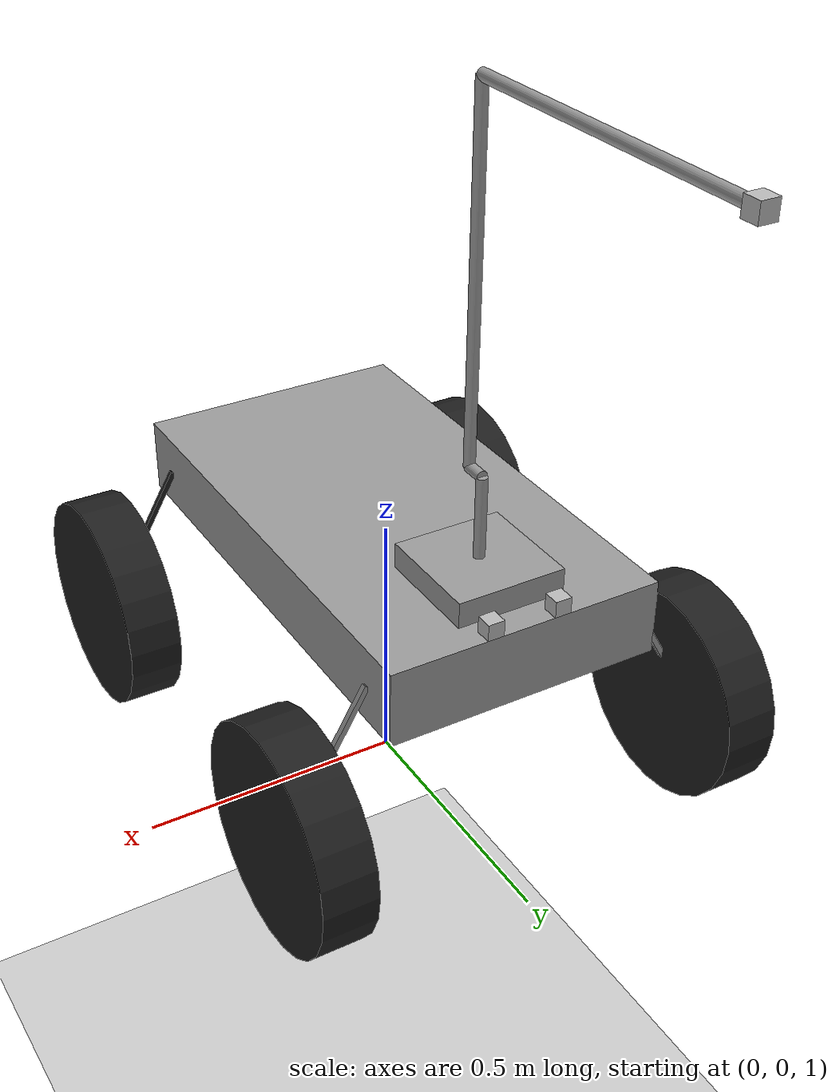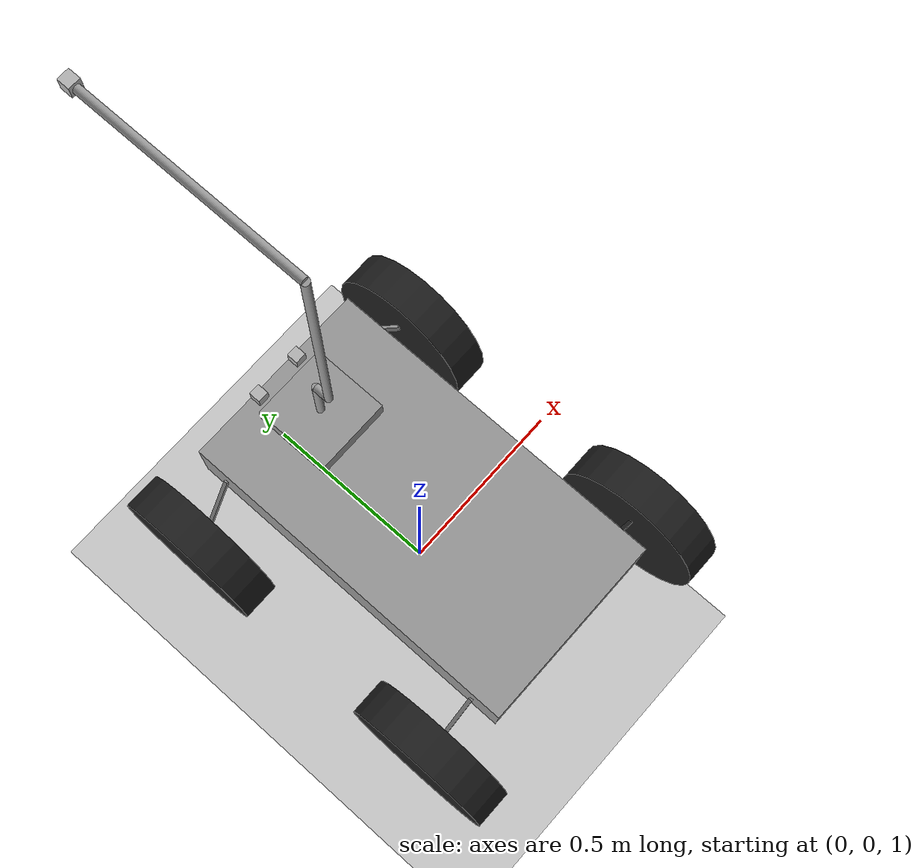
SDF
<sdf version="1.6">
 <world name="sim">
  <gravity>0 0 -9.8</gravity>
  <magnetic_field>6e-06 2.3e-05 -4.2e-05</magnetic_field>
  <atmosphere type="adiabatic"/>
  <physics name="default_physics" default="0" type="ode">
   <max_step_size>0.001</max_step_size>
   <real_time_factor>1</real_time_factor>
   <real_time_update_rate>1000</real_time_update_rate>
  </physics>
  <scene><ambient>0.8 0.8 0.8 2</ambient><background>0.7 0.7 0.7 1</background><shadows>1</shadows></scene>
  <spherical_coordinates>
   <surface_model>EARTH_WGS84</surface_model>
   <latitude_deg>0</latitude_deg>
   <longitude_deg>0</longitude_deg>
   <elevation>0</elevation>
   <heading_deg>0</heading_deg>
  </spherical_coordinates>
  <include><uri>model://sun</uri></include>
  <include><uri>model://Robot_Base</uri><name>rover</name><pose>0 0 0.5   0 0 0</pose></include>
  <plugin name="SimMotorNode" filename="libSimMotorNode.so"/>
  <plugin name="FixFrictionNode" filename="libFixFrictionNode.so"/>
  <model name="ground_plane">
   <static>1</static>
   <link name="link">
    <collision name="collision">
     <geometry><plane><normal>0 0 1</normal><size>100 100</size></plane></geometry>
     <surface><friction><ode><mu>0.25</mu><mu2>0.25</mu2></ode></friction></surface>
    </collision>
    <visual name="visual">
     <cast_shadows>0</cast_shadows>
     <geometry><plane><normal>0 0 1</normal><size>100 100</size></plane></geometry>
     <material>
      <script><uri>file://media/materials/scripts/gazebo.material</uri><name>Gazebo/Tan</name></script>
     </material>
    </visual>
   </link>
   <pose>0.000967 -0.039388 0 0 -0 0</pose>
  </model>
 </world>
</sdf>

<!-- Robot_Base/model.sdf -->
<sdf version='1.6'>
  <model name='Robot_Base'>
    <link name='chassis'>
      <pose frame=''>0 -0 1 0 -0 0</pose>
      <inertial>
        <mass>50</mass>
        <inertia>
          <ixx>0.25</ixx>
          <ixy>0</ixy>
          <ixz>0</ixz>
          <iyy>0.25</iyy>
          <iyz>0</iyz>
          <izz>0.25</izz>
        </inertia>
        <pose frame=''>0 0 0 0 -0 0</pose>
      </inertial>
      <self_collide>0</self_collide>
      <kinematic>0</kinematic>
      <visual name='visual'>
        <pose frame=''>0 0 0 0 -0 0</pose>
        <geometry>
          <box>
            <size>0.508 0.9144 0.1397</size>
          </box>
        </geometry>
        <material>
          <lighting>1</lighting>
          <script>
            <uri>file://media/materials/scripts/gazebo.material</uri>
            <name>Gazebo/Grey</name>
          </script>
          <ambient>0.9 0.9 0.9 1</ambient>
          <diffuse>0.7 0.7 0.7 1</diffuse>
          <specular>0.01 0.01 0.01 1</specular>
          <emissive>0 0 0 1</emissive>
          <shader type='vertex'>
            <normal_map>__default__</normal_map>
          </shader>
        </material>
        <cast_shadows>1</cast_shadows>
        <transparency>0</transparency>
      </visual>
      <collision name='collision'>
        <laser_retro>0</laser_retro>
        <max_contacts>10</max_contacts>
        <pose frame=''>0 0 0 0 -0 0</pose>
        <geometry>
          <box>
            <size>0.508 0.9144 0.1397</size>
          </box>
        </geometry>
        <surface>
          <friction>
            <ode>
              <mu>1</mu>
              <mu2>1</mu2>
              <fdir1>0 0 0</fdir1>
              <slip1>0</slip1>
              <slip2>0</slip2>
            </ode>
            <torsional>
              <coefficient>1</coefficient>
              <patch_radius>0</patch_radius>
              <surface_radius>0</surface_radius>
              <use_patch_radius>1</use_patch_radius>
              <ode>
                <slip>0</slip>
              </ode>
            </torsional>
          </friction>
          <bounce>
            <restitution_coefficient>0</restitution_coefficient>
            <threshold>1e+06</threshold>
          </bounce>
          <contact>
            <collide_without_contact>0</collide_without_contact>
            <collide_without_contact_bitmask>1</collide_without_contact_bitmask>
            <collide_bitmask>1</collide_bitmask>
            <ode>
              <soft_cfm>0</soft_cfm>
              <soft_erp>0.2</soft_erp>
              <kp>1e+13</kp>
              <kd>1</kd>
              <max_vel>0.01</max_vel>
              <min_depth>0</min_depth>
            </ode>
            <bullet>
              <split_impulse>1</split_impulse>
              <split_impulse_penetration_threshold>-0.01</split_impulse_penetration_threshold>
              <soft_cfm>0</soft_cfm>
              <soft_erp>0.2</soft_erp>
              <kp>1e+13</kp>
              <kd>1</kd>
            </bullet>
          </contact>
        </surface>
      </collision>
    </link>
    <link name='back_arm'>
      <pose frame=''>0 0.2667 1.57734 0 -0 0</pose>
      <inertial>
        <mass>1</mass>
        <inertia>
          <ixx>0.145833</ixx>
          <ixy>0</ixy>
          <ixz>0</ixz>
          <iyy>0.145833</iyy>
          <iyz>0</iyz>
          <izz>0.125</izz>
        </inertia>
        <pose frame=''>0 0 0 0 -0 0</pose>
      </inertial>
      <self_collide>0</self_collide>
      <kinematic>0</kinematic>
      <visual name='visual'>
        <pose frame=''>0 0 0 0 -0 0</pose>
        <geometry>
          <cylinder>
            <radius>0.01</radius>
            <length>0.6223</length>
          </cylinder>
        </geometry>
        <material>
          <lighting>1</lighting>
          <script>
            <uri>file://media/materials/scripts/gazebo.material</uri>
            <name>Gazebo/Grey</name>
          </script>
          <ambient>0.3 0.3 0.3 1</ambient>
          <diffuse>0.7 0.7 0.7 1</diffuse>
          <specular>0.01 0.01 0.01 1</specular>
          <emissive>0 0 0 1</emissive>
          <shader type='vertex'>
            <normal_map>__default__</normal_map>
          </shader>
        </material>
        <cast_shadows>1</cast_shadows>
        <transparency>0</transparency>
      </visual>
      <collision name='collision'>
        <laser_retro>0</laser_retro>
        <max_contacts>10</max_contacts>
        <pose frame=''>0 0 0 0 -0 0</pose>
        <geometry>
          <cylinder>
            <radius>0.01</radius>
            <length>0.6223</length>
          </cylinder>
        </geometry>
        <surface>
          <friction>
            <ode>
              <mu>1</mu>
              <mu2>1</mu2>
              <fdir1>0 0 0</fdir1>
              <slip1>0</slip1>
              <slip2>0</slip2>
            </ode>
            <torsional>
              <coefficient>1</coefficient>
              <patch_radius>0</patch_radius>
              <surface_radius>0</surface_radius>
              <use_patch_radius>1</use_patch_radius>
              <ode>
                <slip>0</slip>
              </ode>
            </torsional>
          </friction>
          <bounce>
            <restitution_coefficient>0</restitution_coefficient>
            <threshold>1e+06</threshold>
          </bounce>
          <contact>
            <collide_without_contact>0</collide_without_contact>
            <collide_without_contact_bitmask>1</collide_without_contact_bitmask>
            <collide_bitmask>1</collide_bitmask>
            <ode>
              <soft_cfm>0</soft_cfm>
              <soft_erp>0.2</soft_erp>
              <kp>1e+13</kp>
              <kd>1</kd>
              <max_vel>0.01</max_vel>
              <min_depth>0</min_depth>
            </ode>
            <bullet>
              <split_impulse>1</split_impulse>
              <split_impulse_penetration_threshold>-0.01</split_impulse_penetration_threshold>
              <soft_cfm>0</soft_cfm>
              <soft_erp>0.2</soft_erp>
              <kp>1e+13</kp>
              <kd>1</kd>
            </bullet>
          </contact>
        </surface>
      </collision>
    </link>
    <link name='base_arm'>
      <pose frame=''>-0 0.3048 1.09335 0 -0 0</pose>
      <inertial>
        <mass>1</mass>
        <inertia>
          <ixx>0.166667</ixx>
          <ixy>0</ixy>
          <ixz>0</ixz>
          <iyy>0.166667</iyy>
          <iyz>0</iyz>
          <izz>0.166667</izz>
        </inertia>
        <pose frame=''>0 0 0 0 -0 0</pose>
      </inertial>
      <self_collide>0</self_collide>
      <kinematic>0</kinematic>
      <visual name='visual'>
        <pose frame=''>0 0 0 0 -0 0</pose>
        <geometry>
          <box>
            <size>0.2 0.2 0.04699</size>
          </box>
        </geometry>
        <material>
          <lighting>1</lighting>
          <script>
            <uri>file://media/materials/scripts/gazebo.material</uri>
            <name>Gazebo/Grey</name>
          </script>
          <ambient>0.3 0.3 0.3 1</ambient>
          <diffuse>0.7 0.7 0.7 1</diffuse>
          <specular>0.01 0.01 0.01 1</specular>
          <emissive>0 0 0 1</emissive>
          <shader type='vertex'>
            <normal_map>__default__</normal_map>
          </shader>
        </material>
        <cast_shadows>1</cast_shadows>
        <transparency>0</transparency>
      </visual>
      <collision name='collision'>
        <laser_retro>0</laser_retro>
        <max_contacts>10</max_contacts>
        <pose frame=''>0 0 0 0 -0 0</pose>
        <geometry>
          <box>
            <size>0.2 0.2 0.04699</size>
          </box>
        </geometry>
        <surface>
          <friction>
            <ode>
              <mu>1</mu>
              <mu2>1</mu2>
              <fdir1>0 0 0</fdir1>
              <slip1>0</slip1>
              <slip2>0</slip2>
            </ode>
            <torsional>
              <coefficient>1</coefficient>
              <patch_radius>0</patch_radius>
              <surface_radius>0</surface_radius>
              <use_patch_radius>1</use_patch_radius>
              <ode>
                <slip>0</slip>
              </ode>
            </torsional>
          </friction>
          <bounce>
            <restitution_coefficient>0</restitution_coefficient>
            <threshold>1e+06</threshold>
          </bounce>
          <contact>
            <collide_without_contact>0</collide_without_contact>
            <collide_without_contact_bitmask>1</collide_without_contact_bitmask>
            <collide_bitmask>1</collide_bitmask>
            <ode>
              <soft_cfm>0</soft_cfm>
              <soft_erp>0.2</soft_erp>
              <kp>1e+13</kp>
              <kd>1</kd>
              <max_vel>0.01</max_vel>
              <min_depth>0</min_depth>
            </ode>
            <bullet>
              <split_impulse>1</split_impulse>
              <split_impulse_penetration_threshold>-0.01</split_impulse_penetration_threshold>
              <soft_cfm>0</soft_cfm>
              <soft_erp>0.2</soft_erp>
              <kp>1e+13</kp>
              <kd>1</kd>
            </bullet>
          </contact>
        </surface>
      </collision>
    </link>
    <link name='center_shaft_arm'>
      <pose frame=''>0 0.3048 1.19152 0 -0 0</pose>
      <inertial>
        <mass>1</mass>
        <inertia>
          <ixx>0.145833</ixx>
          <ixy>0</ixy>
          <ixz>0</ixz>
          <iyy>0.145833</iyy>
          <iyz>0</iyz>
          <izz>0.125</izz>
        </inertia>
        <pose frame=''>0 0 0 0 -0 0</pose>
      </inertial>
      <self_collide>0</self_collide>
      <kinematic>0</kinematic>
      <visual name='visual'>
        <pose frame=''>0 0 0 0 -0 0</pose>
        <geometry>
          <cylinder>
            <radius>0.01</radius>
            <length>0.149352</length>
          </cylinder>
        </geometry>
        <material>
          <lighting>1</lighting>
          <script>
            <uri>file://media/materials/scripts/gazebo.material</uri>
            <name>Gazebo/Grey</name>
          </script>
          <ambient>0.3 0.3 0.3 1</ambient>
          <diffuse>0.7 0.7 0.7 1</diffuse>
          <specular>0.01 0.01 0.01 1</specular>
          <emissive>0 0 0 1</emissive>
          <shader type='vertex'>
            <normal_map>__default__</normal_map>
          </shader>
        </material>
        <cast_shadows>1</cast_shadows>
        <transparency>0</transparency>
      </visual>
      <collision name='collision'>
        <laser_retro>0</laser_retro>
        <max_contacts>10</max_contacts>
        <pose frame=''>0 0 0 0 -0 0</pose>
        <geometry>
          <cylinder>
            <radius>0.01</radius>
            <length>0.149352</length>
          </cylinder>
        </geometry>
        <surface>
          <friction>
            <ode>
              <mu>1</mu>
              <mu2>1</mu2>
              <fdir1>0 0 0</fdir1>
              <slip1>0</slip1>
              <slip2>0</slip2>
            </ode>
            <torsional>
              <coefficient>1</coefficient>
              <patch_radius>0</patch_radius>
              <surface_radius>0</surface_radius>
              <use_patch_radius>1</use_patch_radius>
              <ode>
                <slip>0</slip>
              </ode>
            </torsional>
          </friction>
          <bounce>
            <restitution_coefficient>0</restitution_coefficient>
            <threshold>1e+06</threshold>
          </bounce>
          <contact>
            <collide_without_contact>0</collide_without_contact>
            <collide_without_contact_bitmask>1</collide_without_contact_bitmask>
            <collide_bitmask>1</collide_bitmask>
            <ode>
              <soft_cfm>0</soft_cfm>
              <soft_erp>0.2</soft_erp>
              <kp>1e+13</kp>
              <kd>1</kd>
              <max_vel>0.01</max_vel>
              <min_depth>0</min_depth>
            </ode>
            <bullet>
              <split_impulse>1</split_impulse>
              <split_impulse_penetration_threshold>-0.01</split_impulse_penetration_threshold>
              <soft_cfm>0</soft_cfm>
              <soft_erp>0.2</soft_erp>
              <kp>1e+13</kp>
              <kd>1</kd>
            </bullet>
          </contact>
        </surface>
      </collision>
    </link>
    <link name='center_shaft_offset_arm'>
      <pose frame=''>-0 0.28575 1.26619 -1.5708 0 0</pose>
      <inertial>
        <mass>1</mass>
        <inertia>
          <ixx>0.145833</ixx>
          <ixy>0</ixy>
          <ixz>0</ixz>
          <iyy>0.145833</iyy>
          <iyz>0</iyz>
          <izz>0.125</izz>
        </inertia>
        <pose frame=''>0 0 0 0 -0 0</pose>
      </inertial>
      <self_collide>0</self_collide>
      <kinematic>0</kinematic>
      <visual name='visual'>
        <pose frame=''>0 0 0 0 -0 0</pose>
        <geometry>
          <cylinder>
            <radius>0.01</radius>
            <length>0.0381</length>
          </cylinder>
        </geometry>
        <material>
          <lighting>1</lighting>
          <script>
            <uri>file://media/materials/scripts/gazebo.material</uri>
            <name>Gazebo/Grey</name>
          </script>
          <ambient>0.3 0.3 0.3 1</ambient>
          <diffuse>0.7 0.7 0.7 1</diffuse>
          <specular>0.01 0.01 0.01 1</specular>
          <emissive>0 0 0 1</emissive>
          <shader type='vertex'>
            <normal_map>__default__</normal_map>
          </shader>
        </material>
        <cast_shadows>1</cast_shadows>
        <transparency>0</transparency>
      </visual>
      <collision name='collision'>
        <laser_retro>0</laser_retro>
        <max_contacts>10</max_contacts>
        <pose frame=''>0 0 0 0 -0 0</pose>
        <geometry>
          <cylinder>
            <radius>0.01</radius>
            <length>0.0381</length>
          </cylinder>
        </geometry>
        <surface>
          <friction>
            <ode>
              <mu>1</mu>
              <mu2>1</mu2>
              <fdir1>0 0 0</fdir1>
              <slip1>0</slip1>
              <slip2>0</slip2>
            </ode>
            <torsional>
              <coefficient>1</coefficient>
              <patch_radius>0</patch_radius>
              <surface_radius>0</surface_radius>
              <use_patch_radius>1</use_patch_radius>
              <ode>
                <slip>0</slip>
              </ode>
            </torsional>
          </friction>
          <bounce>
            <restitution_coefficient>0</restitution_coefficient>
            <threshold>1e+06</threshold>
          </bounce>
          <contact>
            <collide_without_contact>0</collide_without_contact>
            <collide_without_contact_bitmask>1</collide_without_contact_bitmask>
            <collide_bitmask>1</collide_bitmask>
            <ode>
              <soft_cfm>0</soft_cfm>
              <soft_erp>0.2</soft_erp>
              <kp>1e+13</kp>
              <kd>1</kd>
              <max_vel>0.01</max_vel>
              <min_depth>0</min_depth>
            </ode>
            <bullet>
              <split_impulse>1</split_impulse>
              <split_impulse_penetration_threshold>-0.01</split_impulse_penetration_threshold>
              <soft_cfm>0</soft_cfm>
              <soft_erp>0.2</soft_erp>
              <kp>1e+13</kp>
              <kd>1</kd>
            </bullet>
          </contact>
        </surface>
      </collision>
    </link>
    <link name='fore_arm'>
      <pose frame=''>0 0.5461 1.88849 1.57079 -0 0</pose>
      <inertial>
        <mass>1</mass>
        <inertia>
          <ixx>0.145833</ixx>
          <ixy>0</ixy>
          <ixz>0</ixz>
          <iyy>0.145833</iyy>
          <iyz>0</iyz>
          <izz>0.125</izz>
        </inertia>
        <pose frame=''>0 0 0 0 -0 0</pose>
      </inertial>
      <self_collide>0</self_collide>
      <kinematic>0</kinematic>
      <visual name='visual'>
        <pose frame=''>0 0 0 0 -0 0</pose>
        <geometry>
          <cylinder>
            <radius>0.01</radius>
            <length>0.5588</length>
          </cylinder>
        </geometry>
        <material>
          <lighting>1</lighting>
          <script>
            <uri>file://media/materials/scripts/gazebo.material</uri>
            <name>Gazebo/Grey</name>
          </script>
          <ambient>0.3 0.3 0.3 1</ambient>
          <diffuse>0.7 0.7 0.7 1</diffuse>
          <specular>0.01 0.01 0.01 1</specular>
          <emissive>0 0 0 1</emissive>
          <shader type='vertex'>
            <normal_map>__default__</normal_map>
          </shader>
        </material>
        <cast_shadows>1</cast_shadows>
        <transparency>0</transparency>
      </visual>
      <collision name='collision'>
        <laser_retro>0</laser_retro>
        <max_contacts>10</max_contacts>
        <pose frame=''>0 0 0 0 -0 0</pose>
        <geometry>
          <cylinder>
            <radius>0.01</radius>
            <length>0.5588</length>
          </cylinder>
        </geometry>
        <surface>
          <friction>
            <ode>
              <mu>1</mu>
              <mu2>1</mu2>
              <fdir1>0 0 0</fdir1>
              <slip1>0</slip1>
              <slip2>0</slip2>
            </ode>
            <torsional>
              <coefficient>1</coefficient>
              <patch_radius>0</patch_radius>
              <surface_radius>0</surface_radius>
              <use_patch_radius>1</use_patch_radius>
              <ode>
                <slip>0</slip>
              </ode>
            </torsional>
          </friction>
          <bounce>
            <restitution_coefficient>0</restitution_coefficient>
            <threshold>1e+06</threshold>
          </bounce>
          <contact>
            <collide_without_contact>0</collide_without_contact>
            <collide_without_contact_bitmask>1</collide_without_contact_bitmask>
            <collide_bitmask>1</collide_bitmask>
            <ode>
              <soft_cfm>0</soft_cfm>
              <soft_erp>0.2</soft_erp>
              <kp>1e+13</kp>
              <kd>1</kd>
              <max_vel>0.01</max_vel>
              <min_depth>0</min_depth>
            </ode>
            <bullet>
              <split_impulse>1</split_impulse>
              <split_impulse_penetration_threshold>-0.01</split_impulse_penetration_threshold>
              <soft_cfm>0</soft_cfm>
              <soft_erp>0.2</soft_erp>
              <kp>1e+13</kp>
              <kd>1</kd>
            </bullet>
          </contact>
        </surface>
      </collision>
    </link>
    <link name='left_back_leg'>
      <pose frame=''>0.3238 0.381 0.879102 0 1.0472 0</pose>
      <inertial>
        <mass>1</mass>
        <inertia>
          <ixx>0.166667</ixx>
          <ixy>0</ixy>
          <ixz>0</ixz>
          <iyy>0.166667</iyy>
          <iyz>0</iyz>
          <izz>0.166667</izz>
        </inertia>
        <pose frame=''>0 0 0 0 -0 0</pose>
      </inertial>
      <self_collide>0</self_collide>
      <kinematic>0</kinematic>
      <visual name='visual'>
        <pose frame=''>0 0 0 0 -0 0</pose>
        <geometry>
          <box>
            <size>0.2794 0.01 0.01</size>
          </box>
        </geometry>
        <material>
          <lighting>1</lighting>
          <script>
            <uri>file://media/materials/scripts/gazebo.material</uri>
            <name>Gazebo/Grey</name>
          </script>
          <ambient>0.5 0.5 0.5 1</ambient>
          <diffuse>0.7 0.7 0.7 1</diffuse>
          <specular>0.01 0.01 0.01 1</specular>
          <emissive>0 0 0 1</emissive>
          <shader type='vertex'>
            <normal_map>__default__</normal_map>
          </shader>
        </material>
        <cast_shadows>1</cast_shadows>
        <transparency>0</transparency>
      </visual>
      <collision name='collision_0'>
        <laser_retro>0</laser_retro>
        <max_contacts>10</max_contacts>
        <pose frame=''>0 0 0 0 -0 0</pose>
        <geometry>
          <box>
            <size>0.2794 0.01 0.01</size>
          </box>
        </geometry>
        <surface>
          <friction>
            <ode>
              <mu>1</mu>
              <mu2>1</mu2>
              <fdir1>0 0 0</fdir1>
              <slip1>0</slip1>
              <slip2>0</slip2>
            </ode>
            <torsional>
              <coefficient>1</coefficient>
              <patch_radius>0</patch_radius>
              <surface_radius>0</surface_radius>
              <use_patch_radius>1</use_patch_radius>
              <ode>
                <slip>0</slip>
              </ode>
            </torsional>
          </friction>
          <bounce>
            <restitution_coefficient>0</restitution_coefficient>
            <threshold>1e+06</threshold>
          </bounce>
          <contact>
            <collide_without_contact>0</collide_without_contact>
            <collide_without_contact_bitmask>1</collide_without_contact_bitmask>
            <collide_bitmask>1</collide_bitmask>
            <ode>
              <soft_cfm>0</soft_cfm>
              <soft_erp>0.2</soft_erp>
              <kp>1e+13</kp>
              <kd>1</kd>
              <max_vel>0.01</max_vel>
              <min_depth>0</min_depth>
            </ode>
            <bullet>
              <split_impulse>1</split_impulse>
              <split_impulse_penetration_threshold>-0.01</split_impulse_penetration_threshold>
              <soft_cfm>0</soft_cfm>
              <soft_erp>0.2</soft_erp>
              <kp>1e+13</kp>
              <kd>1</kd>
            </bullet>
          </contact>
        </surface>
      </collision>
    </link>
    <link name='left_back_wheel'>
      <pose frame=''>0.393708 0.380992 0.758093 2.99584 1.57079 2.99582</pose>
      <inertial>
        <mass>1</mass>
        <inertia>
          <ixx>0.145833</ixx>
          <ixy>0</ixy>
          <ixz>0</ixz>
          <iyy>0.145833</iyy>
          <iyz>0</iyz>
          <izz>0.125</izz>
        </inertia>
        <pose frame=''>0 0 0 0 -0 0</pose>
      </inertial>
      <self_collide>0</self_collide>
      <kinematic>0</kinematic>
      <visual name='visual'>
        <pose frame=''>0 0 0 0 -0 0</pose>
        <geometry>
          <cylinder>
            <radius>0.2032</radius>
            <length>0.1</length>
          </cylinder>
        </geometry>
        <material>
          <lighting>1</lighting>
          <script>
            <uri>file://media/materials/scripts/gazebo.material</uri>
            <name>Gazebo/Black</name>
          </script>
          <ambient>0.1 0.1 0.1 1</ambient>
          <diffuse>0.7 0.7 0.7 1</diffuse>
          <specular>0.01 0.01 0.01 1</specular>
          <emissive>0 0 0 1</emissive>
          <shader type='vertex'>
            <normal_map>__default__</normal_map>
          </shader>
        </material>
        <cast_shadows>1</cast_shadows>
        <transparency>0</transparency>
      </visual>
      <collision name='collision'>
        <laser_retro>0</laser_retro>
        <max_contacts>10</max_contacts>
        <pose frame=''>0 0 0 0 -0 0</pose>
        <geometry>
          <cylinder>
            <radius>0.2032</radius>
            <length>0.1</length>
          </cylinder>
        </geometry>
        <surface>
          <friction>
            <ode>
              <mu>0.7500001</mu>
              <mu2>0.7500001</mu2>
              <fdir1>0 0 0</fdir1>
              <slip1>0.37500001</slip1>
              <slip2>0.37500001</slip2>
            </ode>
            <torsional>
              <coefficient>1</coefficient>
              <patch_radius>0</patch_radius>
              <surface_radius>0</surface_radius>
              <use_patch_radius>1</use_patch_radius>
              <ode>
                <slip>0</slip>
              </ode>
            </torsional>
          </friction>
          <bounce>
            <restitution_coefficient>0</restitution_coefficient>
            <threshold>1e+06</threshold>
          </bounce>
          <contact>
            <collide_without_contact>0</collide_without_contact>
            <collide_without_contact_bitmask>1</collide_without_contact_bitmask>
            <collide_bitmask>1</collide_bitmask>
            <ode>
              <soft_cfm>0</soft_cfm>
              <soft_erp>0.2</soft_erp>
              <kp>1e+13</kp>
              <kd>1</kd>
              <max_vel>0.01</max_vel>
              <min_depth>0</min_depth>
            </ode>
            <bullet>
              <split_impulse>1</split_impulse>
              <split_impulse_penetration_threshold>-0.01</split_impulse_penetration_threshold>
              <soft_cfm>0</soft_cfm>
              <soft_erp>0.2</soft_erp>
              <kp>1e+13</kp>
              <kd>1</kd>
            </bullet>
          </contact>
        </surface>
      </collision>
    </link>
    <link name='left_front_leg'>
      <pose frame=''>0.3238 -0.381 0.879102 0 1.0472 0</pose>
      <inertial>
        <mass>1</mass>
        <inertia>
          <ixx>0.166667</ixx>
          <ixy>0</ixy>
          <ixz>0</ixz>
          <iyy>0.166667</iyy>
          <iyz>0</iyz>
          <izz>0.166667</izz>
        </inertia>
        <pose frame=''>0 0 0 0 -0 0</pose>
      </inertial>
      <self_collide>0</self_collide>
      <kinematic>0</kinematic>
      <visual name='visual'>
        <pose frame=''>0 0 0 0 -0 0</pose>
        <geometry>
          <box>
            <size>0.2794 0.01 0.01</size>
          </box>
        </geometry>
        <material>
          <lighting>1</lighting>
          <script>
            <uri>file://media/materials/scripts/gazebo.material</uri>
            <name>Gazebo/Black</name>
          </script>
          <ambient>0.5 0.5 0.5 1</ambient>
          <diffuse>0.7 0.7 0.7 1</diffuse>
          <specular>0.01 0.01 0.01 1</specular>
          <emissive>0 0 0 1</emissive>
          <shader type='vertex'>
            <normal_map>__default__</normal_map>
          </shader>
        </material>
        <cast_shadows>1</cast_shadows>
        <transparency>0</transparency>
      </visual>
      <collision name='collision_0'>
        <laser_retro>0</laser_retro>
        <max_contacts>10</max_contacts>
        <pose frame=''>0 0 0 0 -0 0</pose>
        <geometry>
          <box>
            <size>0.2794 0.01 0.01</size>
          </box>
        </geometry>
        <surface>
          <friction>
            <ode>
              <mu>1</mu>
              <mu2>1</mu2>
              <fdir1>0 0 0</fdir1>
              <slip1>0</slip1>
              <slip2>0</slip2>
            </ode>
            <torsional>
              <coefficient>1</coefficient>
              <patch_radius>0</patch_radius>
              <surface_radius>0</surface_radius>
              <use_patch_radius>1</use_patch_radius>
              <ode>
                <slip>0</slip>
              </ode>
            </torsional>
          </friction>
          <bounce>
            <restitution_coefficient>0</restitution_coefficient>
            <threshold>1e+06</threshold>
          </bounce>
          <contact>
            <collide_without_contact>0</collide_without_contact>
            <collide_without_contact_bitmask>1</collide_without_contact_bitmask>
            <collide_bitmask>1</collide_bitmask>
            <ode>
              <soft_cfm>0</soft_cfm>
              <soft_erp>0.2</soft_erp>
              <kp>1e+13</kp>
              <kd>1</kd>
              <max_vel>0.01</max_vel>
              <min_depth>0</min_depth>
            </ode>
            <bullet>
              <split_impulse>1</split_impulse>
              <split_impulse_penetration_threshold>-0.01</split_impulse_penetration_threshold>
              <soft_cfm>0</soft_cfm>
              <soft_erp>0.2</soft_erp>
              <kp>1e+13</kp>
              <kd>1</kd>
            </bullet>
          </contact>
        </surface>
      </collision>
    </link>
    <link name='left_front_wheel'>
      <pose frame=''>0.3937 -0.38101 0.758032 2.98885 1.57079 2.98885</pose>
      <inertial>
        <mass>1</mass>
        <inertia>
          <ixx>0.145833</ixx>
          <ixy>0</ixy>
          <ixz>0</ixz>
          <iyy>0.145833</iyy>
          <iyz>0</iyz>
          <izz>0.125</izz>
        </inertia>
        <pose frame=''>0 0 0 0 -0 0</pose>
      </inertial>
      <self_collide>0</self_collide>
      <kinematic>0</kinematic>
      <visual name='visual'>
        <pose frame=''>0 0 0 0 -0 0</pose>
        <geometry>
          <cylinder>
            <radius>0.2033</radius>
            <length>0.1</length>
          </cylinder>
        </geometry>
        <material>
          <lighting>1</lighting>
          <script>
            <uri>file://media/materials/scripts/gazebo.material</uri>
            <name>Gazebo/Black</name>
          </script>
          <ambient>0.1 0.1 0.1 1</ambient>
          <diffuse>0.7 0.7 0.7 1</diffuse>
          <specular>0.01 0.01 0.01 1</specular>
          <emissive>0 0 0 1</emissive>
          <shader type='vertex'>
            <normal_map>__default__</normal_map>
          </shader>
        </material>
        <cast_shadows>1</cast_shadows>
        <transparency>0</transparency>
      </visual>
      <collision name='collision'>
        <laser_retro>0</laser_retro>
        <max_contacts>10</max_contacts>
        <pose frame=''>0 0 0 0 -0 0</pose>
        <geometry>
          <cylinder>
            <radius>0.2033</radius>
            <length>0.1</length>
          </cylinder>
        </geometry>
        <surface>
          <friction>
            <ode>
              <mu>0.7500001</mu>
              <mu2>0.7500001</mu2>
              <fdir1>0 0 0</fdir1>
              <slip1>0.37500001</slip1>
              <slip2>0.37500001</slip2>
            </ode>
            <torsional>
              <coefficient>1</coefficient>
              <patch_radius>0</patch_radius>
              <surface_radius>0</surface_radius>
              <use_patch_radius>1</use_patch_radius>
              <ode>
                <slip>0</slip>
              </ode>
            </torsional>
          </friction>
          <bounce>
            <restitution_coefficient>0</restitution_coefficient>
            <threshold>1e+06</threshold>
          </bounce>
          <contact>
            <collide_without_contact>0</collide_without_contact>
            <collide_without_contact_bitmask>1</collide_without_contact_bitmask>
            <collide_bitmask>1</collide_bitmask>
            <ode>
              <soft_cfm>0</soft_cfm>
              <soft_erp>0.2</soft_erp>
              <kp>1e+13</kp>
              <kd>1</kd>
              <max_vel>0.01</max_vel>
              <min_depth>0</min_depth>
            </ode>
            <bullet>
              <split_impulse>1</split_impulse>
              <split_impulse_penetration_threshold>-0.01</split_impulse_penetration_threshold>
              <soft_cfm>0</soft_cfm>
              <soft_erp>0.2</soft_erp>
              <kp>1e+13</kp>
              <kd>1</kd>
            </bullet>
          </contact>
        </surface>
      </collision>
    </link>
    <link name='right_back_leg'>
      <pose frame=''>-0.3238 0.381 0.879102 0 -1.0472 0</pose>
      <inertial>
        <mass>1</mass>
        <inertia>
          <ixx>0.166667</ixx>
          <ixy>0</ixy>
          <ixz>0</ixz>
          <iyy>0.166667</iyy>
          <iyz>0</iyz>
          <izz>0.166667</izz>
        </inertia>
        <pose frame=''>0 0 0 0 -0 0</pose>
      </inertial>
      <self_collide>0</self_collide>
      <kinematic>0</kinematic>
      <visual name='visual'>
        <pose frame=''>0 0 0 0 -0 0</pose>
        <geometry>
          <box>
            <size>0.2794 0.01 0.01</size>
          </box>
        </geometry>
        <material>
          <lighting>1</lighting>
          <script>
            <uri>file://media/materials/scripts/gazebo.material</uri>
            <name>Gazebo/Grey</name>
          </script>
          <ambient>0.5 0.5 0.5 1</ambient>
          <diffuse>0.7 0.7 0.7 1</diffuse>
          <specular>0.01 0.01 0.01 1</specular>
          <emissive>0 0 0 1</emissive>
          <shader type='vertex'>
            <normal_map>__default__</normal_map>
          </shader>
        </material>
        <cast_shadows>1</cast_shadows>
        <transparency>0</transparency>
      </visual>
      <collision name='collision_0'>
        <laser_retro>0</laser_retro>
        <max_contacts>10</max_contacts>
        <pose frame=''>0 0 0 0 -0 0</pose>
        <geometry>
          <box>
            <size>0.2794 0.01 0.01</size>
          </box>
        </geometry>
        <surface>
          <friction>
            <ode>
              <mu>1</mu>
              <mu2>1</mu2>
              <fdir1>0 0 0</fdir1>
              <slip1>0</slip1>
              <slip2>0</slip2>
            </ode>
            <torsional>
              <coefficient>1</coefficient>
              <patch_radius>0</patch_radius>
              <surface_radius>0</surface_radius>
              <use_patch_radius>1</use_patch_radius>
              <ode>
                <slip>0</slip>
              </ode>
            </torsional>
          </friction>
          <bounce>
            <restitution_coefficient>0</restitution_coefficient>
            <threshold>1e+06</threshold>
          </bounce>
          <contact>
            <collide_without_contact>0</collide_without_contact>
            <collide_without_contact_bitmask>1</collide_without_contact_bitmask>
            <collide_bitmask>1</collide_bitmask>
            <ode>
              <soft_cfm>0</soft_cfm>
              <soft_erp>0.2</soft_erp>
              <kp>1e+13</kp>
              <kd>1</kd>
              <max_vel>0.01</max_vel>
              <min_depth>0</min_depth>
            </ode>
            <bullet>
              <split_impulse>1</split_impulse>
              <split_impulse_penetration_threshold>-0.01</split_impulse_penetration_threshold>
              <soft_cfm>0</soft_cfm>
              <soft_erp>0.2</soft_erp>
              <kp>1e+13</kp>
              <kd>1</kd>
            </bullet>
          </contact>
        </surface>
      </collision>
    </link>
    <link name='right_back_wheel'>
      <pose frame=''>-0.393692 0.381037 0.758158 2.91782 1.57079 2.9178</pose>
      <inertial>
        <mass>1</mass>
        <inertia>
          <ixx>0.145833</ixx>
          <ixy>0</ixy>
          <ixz>0</ixz>
          <iyy>0.145833</iyy>
          <iyz>0</iyz>
          <izz>0.125</izz>
        </inertia>
        <pose frame=''>0 0 0 0 -0 0</pose>
      </inertial>
      <self_collide>0</self_collide>
      <kinematic>0</kinematic>
      <visual name='visual'>
        <pose frame=''>0 0 0 0 -0 0</pose>
        <geometry>
          <cylinder>
            <radius>0.2032</radius>
            <length>0.1</length>
          </cylinder>
        </geometry>
        <material>
          <lighting>1</lighting>
          <script>
            <uri>file://media/materials/scripts/gazebo.material</uri>
            <name>Gazebo/Black</name>
          </script>
          <ambient>0.1 0.1 0.1 1</ambient>
          <diffuse>0.7 0.7 0.7 1</diffuse>
          <specular>0.01 0.01 0.01 1</specular>
          <emissive>0 0 0 1</emissive>
          <shader type='vertex'>
            <normal_map>__default__</normal_map>
          </shader>
        </material>
        <cast_shadows>1</cast_shadows>
        <transparency>0</transparency>
      </visual>
      <collision name='collision'>
        <laser_retro>0</laser_retro>
        <max_contacts>10</max_contacts>
        <pose frame=''>0 0 0 0 -0 0</pose>
        <geometry>
          <cylinder>
            <radius>0.2032</radius>
            <length>0.1</length>
          </cylinder>
        </geometry>
        <surface>
          <friction>
            <ode>
              <mu>0.7500001</mu>
              <mu2>0.7500001</mu2>
              <fdir1>0 0 0</fdir1>
              <slip1>0.37500001</slip1>
              <slip2>0.37500001</slip2>
            </ode>
            <torsional>
              <coefficient>1</coefficient>
              <patch_radius>0</patch_radius>
              <surface_radius>0</surface_radius>
              <use_patch_radius>1</use_patch_radius>
              <ode>
                <slip>0</slip>
              </ode>
            </torsional>
          </friction>
          <bounce>
            <restitution_coefficient>0</restitution_coefficient>
            <threshold>1e+06</threshold>
          </bounce>
          <contact>
            <collide_without_contact>0</collide_without_contact>
            <collide_without_contact_bitmask>1</collide_without_contact_bitmask>
            <collide_bitmask>1</collide_bitmask>
            <ode>
              <soft_cfm>0</soft_cfm>
              <soft_erp>0.2</soft_erp>
              <kp>1e+13</kp>
              <kd>1</kd>
              <max_vel>0.01</max_vel>
              <min_depth>0</min_depth>
            </ode>
            <bullet>
              <split_impulse>1</split_impulse>
              <split_impulse_penetration_threshold>-0.01</split_impulse_penetration_threshold>
              <soft_cfm>0</soft_cfm>
              <soft_erp>0.2</soft_erp>
              <kp>1e+13</kp>
              <kd>1</kd>
            </bullet>
          </contact>
        </surface>
      </collision>
    </link>
    <link name='right_front_leg'>
      <pose frame=''>-0.3238 -0.381 0.879102 0 -1.0472 0</pose>
      <inertial>
        <mass>1</mass>
        <inertia>
          <ixx>0.166667</ixx>
          <ixy>0</ixy>
          <ixz>0</ixz>
          <iyy>0.166667</iyy>
          <iyz>0</iyz>
          <izz>0.166667</izz>
        </inertia>
        <pose frame=''>0 0 0 0 -0 0</pose>
      </inertial>
      <self_collide>0</self_collide>
      <kinematic>0</kinematic>
      <visual name='visual'>
        <pose frame=''>0 0 0 0 -0 0</pose>
        <geometry>
          <box>
            <size>0.2794 0.01 0.01</size>
          </box>
        </geometry>
        <material>
          <lighting>1</lighting>
          <script>
            <uri>file://media/materials/scripts/gazebo.material</uri>
            <name>Gazebo/Grey</name>
          </script>
          <ambient>0.5 0.5 0.5 1</ambient>
          <diffuse>0.7 0.7 0.7 1</diffuse>
          <specular>0.01 0.01 0.01 1</specular>
          <emissive>0 0 0 1</emissive>
          <shader type='vertex'>
            <normal_map>__default__</normal_map>
          </shader>
        </material>
        <cast_shadows>1</cast_shadows>
        <transparency>0</transparency>
      </visual>
      <collision name='collision_0'>
        <laser_retro>0</laser_retro>
        <max_contacts>10</max_contacts>
        <pose frame=''>0 0 0 0 -0 0</pose>
        <geometry>
          <box>
            <size>0.2794 0.01 0.01</size>
          </box>
        </geometry>
        <surface>
          <friction>
            <ode>
              <mu>1</mu>
              <mu2>1</mu2>
              <fdir1>0 0 0</fdir1>
              <slip1>0</slip1>
              <slip2>0</slip2>
            </ode>
            <torsional>
              <coefficient>1</coefficient>
              <patch_radius>0</patch_radius>
              <surface_radius>0</surface_radius>
              <use_patch_radius>1</use_patch_radius>
              <ode>
                <slip>0</slip>
              </ode>
            </torsional>
          </friction>
          <bounce>
            <restitution_coefficient>0</restitution_coefficient>
            <threshold>1e+06</threshold>
          </bounce>
          <contact>
            <collide_without_contact>0</collide_without_contact>
            <collide_without_contact_bitmask>1</collide_without_contact_bitmask>
            <collide_bitmask>1</collide_bitmask>
            <ode>
              <soft_cfm>0</soft_cfm>
              <soft_erp>0.2</soft_erp>
              <kp>1e+13</kp>
              <kd>1</kd>
              <max_vel>0.01</max_vel>
              <min_depth>0</min_depth>
            </ode>
            <bullet>
              <split_impulse>1</split_impulse>
              <split_impulse_penetration_threshold>-0.01</split_impulse_penetration_threshold>
              <soft_cfm>0</soft_cfm>
              <soft_erp>0.2</soft_erp>
              <kp>1e+13</kp>
              <kd>1</kd>
            </bullet>
          </contact>
        </surface>
      </collision>
    </link>
    <link name='right_front_wheel'>
      <pose frame=''>-0.393692 -0.380961 0.758096 2.91124 1.57079 2.91123</pose>
      <inertial>
        <mass>1</mass>
        <inertia>
          <ixx>0.145833</ixx>
          <ixy>0</ixy>
          <ixz>0</ixz>
          <iyy>0.145833</iyy>
          <iyz>0</iyz>
          <izz>0.125</izz>
        </inertia>
        <pose frame=''>0 0 0 0 -0 0</pose>
      </inertial>
      <self_collide>0</self_collide>
      <kinematic>0</kinematic>
      <visual name='ModelPreview_7::right_front_wheel::visual_1'>
        <pose frame=''>0 0 0 0 -0 0</pose>
        <geometry>
          <cylinder>
            <radius>0.2032</radius>
            <length>0.1</length>
          </cylinder>
        </geometry>
        <material>
          <lighting>1</lighting>
          <script>
            <uri>file://media/materials/scripts/gazebo.material</uri>
            <name>Gazebo/Black</name>
          </script>
          <ambient>0.3 0.3 0.3 1</ambient>
          <diffuse>0.7 0.7 0.7 1</diffuse>
          <specular>0.01 0.01 0.01 1</specular>
          <emissive>0 0 0 1</emissive>
          <shader type='vertex'>
            <normal_map>__default__</normal_map>
          </shader>
        </material>
        <cast_shadows>1</cast_shadows>
        <transparency>0</transparency>
      </visual>
      <collision name='collision'>
        <laser_retro>0</laser_retro>
        <max_contacts>10</max_contacts>
        <pose frame=''>0 0 0 0 -0 0</pose>
        <geometry>
          <cylinder>
            <radius>0.2032</radius>
            <length>0.1</length>
          </cylinder>
        </geometry>
        <surface>
          <friction>
            <ode>
              <mu>0.7500001</mu>
              <mu2>0.7500001</mu2>
              <fdir1>0 0 0</fdir1>
              <slip1>0.37500001</slip1>
              <slip2>0.37500001</slip2>
            </ode>
            <torsional>
              <coefficient>1</coefficient>
              <patch_radius>0</patch_radius>
              <surface_radius>0</surface_radius>
              <use_patch_radius>1</use_patch_radius>
              <ode>
                <slip>0</slip>
              </ode>
            </torsional>
          </friction>
          <bounce>
            <restitution_coefficient>0</restitution_coefficient>
            <threshold>1e+06</threshold>
          </bounce>
          <contact>
            <collide_without_contact>0</collide_without_contact>
            <collide_without_contact_bitmask>1</collide_without_contact_bitmask>
            <collide_bitmask>1</collide_bitmask>
            <ode>
              <soft_cfm>0</soft_cfm>
              <soft_erp>0.2</soft_erp>
              <kp>1e+13</kp>
              <kd>1</kd>
              <max_vel>0.01</max_vel>
              <min_depth>0</min_depth>
            </ode>
            <bullet>
              <split_impulse>1</split_impulse>
              <split_impulse_penetration_threshold>-0.01</split_impulse_penetration_threshold>
              <soft_cfm>0</soft_cfm>
              <soft_erp>0.2</soft_erp>
              <kp>1e+13</kp>
              <kd>1</kd>
            </bullet>
          </contact>
        </surface>
      </collision>
    </link>

    <link name='depth_cam_left'>
      <pose frame=''>-0.0635 0.4422 1.08485 0 -0 1.5708</pose>
      <inertial>
        <pose frame=''>0 0 0 0 -0 0</pose>
      </inertial>
      <self_collide>0</self_collide>
      <kinematic>0</kinematic>
      <sensor name='cam_left_sensor' type='camera'>
        <update_rate>30</update_rate>
        <camera name='head'>
          <horizontal_fov>1.39626</horizontal_fov>
          <image>
            <width>800</width>
            <height>800</height>
            <format>R8G8B8</format>
          </image>
          <clip>
            <near>0.02</near>
            <far>300</far>
          </clip>
          <noise>
            <type>gaussian</type>
            <mean>0</mean>
            <stddev>0.007</stddev>
          </noise>
        </camera>
        <plugin name='camera_controller' filename='libgazebo_ros_camera.so'>
          <alwaysOn>true</alwaysOn>
          <updateRate>0.0</updateRate>
          <cameraName>depth_cam/cam_left_sensor</cameraName>
          <imageTopicName>image_raw</imageTopicName>
          <cameraInfoTopicName>camera_info</cameraInfoTopicName>
          <frameName>camera_link</frameName>
          <hackBaseline>0.07</hackBaseline>
          <distortionK1>0.0</distortionK1>
          <distortionK2>0.0</distortionK2>
          <distortionK3>0.0</distortionK3>
          <distortionT1>0.0</distortionT1>
          <distortionT2>0.0</distortionT2>
        </plugin>
      </sensor>
      <visual name='visual'>
        <geometry>
          <box>
            <size>0.03 0.03 0.03</size>
          </box>
        </geometry>
        <pose frame=''>0 0 0 0 -0 0</pose>
        <cast_shadows>1</cast_shadows>
        <transparency>0</transparency>
        <material>
          <shader type='vertex'>
            <normal_map>__default__</normal_map>
          </shader>
          <emissive>0 0 0 1</emissive>
        </material>
      </visual>
      <collision name='collision'>
        <laser_retro>0</laser_retro>
        <max_contacts>10</max_contacts>
        <pose frame=''>0 0 0 0 -0 0</pose>
        <geometry>
          <box>
            <size>0.03 0.03 0.03</size>
          </box>
        </geometry>
      </collision>
    </link>
    <link name='depth_cam_right'>
      <pose frame=''>0.0635 0.4422 1.08485 0 -0 1.5708</pose>
      <inertial>
        <inertia>
          <ixx>1</ixx>
          <ixy>0</ixy>
          <ixz>0</ixz>
          <iyy>1</iyy>
          <iyz>0</iyz>
          <izz>1</izz>
        </inertia>
        <mass>1</mass>
        <pose frame=''>0 0 0 0 -0 0</pose>
      </inertial>
      <self_collide>0</self_collide>
      <kinematic>0</kinematic>
      <sensor name='cam_right_sensor' type='camera'>
        <update_rate>30</update_rate>
        <camera name='head'>
          <horizontal_fov>1.39626</horizontal_fov>
          <image>
            <width>800</width>
            <height>800</height>
            <format>R8G8B8</format>
          </image>
          <clip>
            <near>0.02</near>
            <far>300</far>
          </clip>
          <noise>
            <type>gaussian</type>
            <mean>0</mean>
            <stddev>0.007</stddev>
          </noise>
        </camera>
        <plugin name='camera_controller' filename='libgazebo_ros_camera.so'>
          <alwaysOn>true</alwaysOn>
          <updateRate>0.0</updateRate>
          <cameraName>depth_cam/cam_right_sensor</cameraName>
          <imageTopicName>image_raw</imageTopicName>
          <cameraInfoTopicName>camera_info</cameraInfoTopicName>
          <frameName>camera_link</frameName>
          <hackBaseline>0.07</hackBaseline>
          <distortionK1>0.0</distortionK1>
          <distortionK2>0.0</distortionK2>
          <distortionK3>0.0</distortionK3>
          <distortionT1>0.0</distortionT1>
          <distortionT2>0.0</distortionT2>
        </plugin>
      </sensor>
      <visual name='visual'>
        <geometry>
          <box>
            <size>0.03 0.03 0.03</size>
          </box>
        </geometry>
        <pose frame=''>0 0 0 0 -0 0</pose>
        <cast_shadows>1</cast_shadows>
        <transparency>0</transparency>
        <material>
          <shader type='vertex'>
            <normal_map>__default__</normal_map>
          </shader>
          <emissive>0 0 0 1</emissive>
        </material>
      </visual>
      <collision name='collision'>
        <laser_retro>0</laser_retro>
        <max_contacts>10</max_contacts>
        <pose frame=''>0 0 0 0 -0 0</pose>
        <geometry>
          <box>
            <size>0.03 0.03 0.03</size>
          </box>
        </geometry>
      </collision>
    </link>
      <link name='arm_cam'>
      <pose frame=''>0.0002575 0.8411 1.88903 0 -0 1.5708</pose>
      <inertial>
        <pose frame=''>0 0 0 0 -0 0</pose>
      </inertial>
      <self_collide>0</self_collide>
      <kinematic>0</kinematic>
      <sensor name='arm_cam' type='camera'>
        <update_rate>30</update_rate>
        <camera name='head'>
          <horizontal_fov>1.39626</horizontal_fov>
          <image>
            <width>800</width>
            <height>800</height>
            <format>R8G8B8</format>
          </image>
          <clip>
            <near>0.02</near>
            <far>300</far>
          </clip>
          <noise>
            <type>gaussian</type>
            <mean>0</mean>
            <stddev>0.007</stddev>
          </noise>
        </camera>
        <plugin name='camera_controller' filename='libgazebo_ros_camera.so'>
          <alwaysOn>true</alwaysOn>
          <updateRate>0.0</updateRate>
          <cameraName>cam/arm_cam_sensor</cameraName>
          <imageTopicName>image_raw</imageTopicName>
          <cameraInfoTopicName>camera_info</cameraInfoTopicName>
          <frameName>camera_link</frameName>
          <hackBaseline>0.07</hackBaseline>
          <distortionK1>0.0</distortionK1>
          <distortionK2>0.0</distortionK2>
          <distortionK3>0.0</distortionK3>
          <distortionT1>0.0</distortionT1>
          <distortionT2>0.0</distortionT2>
        </plugin>
      </sensor>
      <visual name='visual'>
        <geometry>
          <box>
            <size>0.03 0.03 0.03</size>
          </box>
        </geometry>
        <pose frame=''>0 0 0 0 -0 0</pose>
        <cast_shadows>1</cast_shadows>
        <transparency>0</transparency>
        <material>
          <shader type='vertex'>
            <normal_map>__default__</normal_map>
          </shader>
          <emissive>0 0 0 1</emissive>
        </material>
      </visual>
      <collision name='collision'>
        <laser_retro>0</laser_retro>
        <max_contacts>10</max_contacts>
        <pose frame=''>0 0 0 0 -0 0</pose>
        <geometry>
          <box>
            <size>0.03 0.03 0.03</size>
          </box>
        </geometry>
      </collision>
    </link>

    <joint name='chassis_depth_cam_left' type='fixed'>
      <parent>chassis</parent>
      <child>depth_cam_left</child>
      <pose frame=''>0 0 0 0 -0 0</pose>
      <physics>
        <ode>
          <limit>
            <cfm>0</cfm>
            <erp>0.2</erp>
          </limit>
          <suspension>
            <cfm>0</cfm>
            <erp>0.2</erp>
          </suspension>
        </ode>
      </physics>
    </joint>
    <joint name='chassis_depth_cam_right' type='fixed'>
      <parent>chassis</parent>
      <child>depth_cam_right</child>
      <pose frame=''>0 0 0 0 -0 0</pose>
      <physics>
        <ode>
          <limit>
            <cfm>0</cfm>
            <erp>0.2</erp>
          </limit>
          <suspension>
            <cfm>0</cfm>
            <erp>0.2</erp>
          </suspension>
        </ode>
      </physics>
    </joint>
    <joint name='fore_arm_cam' type='fixed'>
      <parent>fore_arm</parent>
      <child>arm_cam</child>
      <pose frame=''>0 0 0 0 -0 0</pose>
      <physics>
        <ode>
          <limit>
            <cfm>0</cfm>
            <erp>0.2</erp>
          </limit>
          <suspension>
            <cfm>0</cfm>
            <erp>0.2</erp>
          </suspension>
        </ode>
      </physics>
    </joint>

    <joint name='armbase_armcentershaft' type='revolute'>
      <parent>base_arm</parent>
      <child>center_shaft_arm</child>
      <pose frame=''>0 0 -0.074676 0 -0 0</pose>
      <axis>
        <xyz>0 0 1</xyz>
        <use_parent_model_frame>0</use_parent_model_frame>
        <limit>
          <lower>-3.1</lower>
          <upper>3.1</upper>
          <effort>-1</effort>
          <velocity>-1</velocity>
        </limit>
        <dynamics>
          <spring_reference>0</spring_reference>
          <spring_stiffness>0</spring_stiffness>
          <damping>0</damping>
          <friction>10000</friction>
        </dynamics>
      </axis>
      <physics>
        <ode>
          <limit>
            <cfm>0</cfm>
            <erp>0.2</erp>
          </limit>
          <suspension>
            <cfm>0</cfm>
            <erp>0.2</erp>
          </suspension>
        </ode>
      </physics>
    </joint>
    <joint name='armcentershaft_withoffset' type='fixed'>
      <parent>center_shaft_arm</parent>
      <child>center_shaft_offset_arm</child>
      <pose frame=''>0 0 0 0 -0 0</pose>
      <physics>
        <ode>
          <limit>
            <cfm>0</cfm>
            <erp>0.2</erp>
          </limit>
          <suspension>
            <cfm>0</cfm>
            <erp>0.2</erp>
          </suspension>
        </ode>
      </physics>
    </joint>
    <joint name='armcentershaftoffset_backarm' type='revolute'>
      <parent>center_shaft_offset_arm</parent>
      <child>back_arm</child>
      <pose frame=''>0 0 -0.31115 0 -0 0</pose>
      <axis>
        <xyz>-1 0 0</xyz>
        <use_parent_model_frame>0</use_parent_model_frame>
        <limit>
          <lower>-1.1</lower>
          <upper>1.1</upper>
          <effort>-1</effort>
          <velocity>-1</velocity>
        </limit>
        <dynamics>
          <spring_reference>0</spring_reference>
          <spring_stiffness>0</spring_stiffness>
          <damping>0</damping>
          <friction>1000</friction>
        </dynamics>
      </axis>
      <physics>
        <ode>
          <limit>
            <cfm>0</cfm>
            <erp>0.2</erp>
          </limit>
          <suspension>
            <cfm>0</cfm>
            <erp>0.2</erp>
          </suspension>
        </ode>
      </physics>
    </joint>
    <joint name='backarm_forearm' type='revolute'>
      <parent>back_arm</parent>
      <child>fore_arm</child>
      <pose frame=''>0 0 0.2794 0 -0 0</pose>
      <axis>
        <xyz>-1 0 0</xyz>
        <use_parent_model_frame>0</use_parent_model_frame>
        <limit>
          <lower>-1.1</lower>
          <upper>1.2</upper>
          <effort>-1</effort>
          <velocity>-1</velocity>
        </limit>
        <dynamics>
          <spring_reference>0</spring_reference>
          <spring_stiffness>0</spring_stiffness>
          <damping>0</damping>
          <friction>1000</friction>
        </dynamics>
      </axis>
      <physics>
        <ode>
          <limit>
            <cfm>0</cfm>
            <erp>0.2</erp>
          </limit>
          <suspension>
            <cfm>0</cfm>
            <erp>0.2</erp>
          </suspension>
        </ode>
      </physics>
    </joint>
    <joint name='chassis_armbase' type='fixed'>
      <parent>chassis</parent>
      <child>base_arm</child>
      <pose frame=''>0 0 0 0 -0 0</pose>
      <physics>
        <ode>
          <limit>
            <cfm>0</cfm>
            <erp>0.2</erp>
          </limit>
          <suspension>
            <cfm>0</cfm>
            <erp>0.2</erp>
          </suspension>
        </ode>
      </physics>
    </joint>
    <joint name='chassis_left_front_leg' type='fixed'>
      <parent>chassis</parent>
      <child>left_front_leg</child>
      <pose frame=''>0 0 0 0 -0 0</pose>
      <physics>
        <ode>
          <limit>
            <cfm>0</cfm>
            <erp>0.2</erp>
          </limit>
          <suspension>
            <cfm>0</cfm>
            <erp>0.2</erp>
          </suspension>
        </ode>
      </physics>
    </joint>
    <joint name='chassis_right_back_leg' type='fixed'>
      <parent>chassis</parent>
      <child>right_back_leg</child>
      <pose frame=''>0 0 0 0 -0 0</pose>
      <physics>
        <ode>
          <limit>
            <cfm>0</cfm>
            <erp>0.2</erp>
          </limit>
          <suspension>
            <cfm>0</cfm>
            <erp>0.2</erp>
          </suspension>
        </ode>
      </physics>
    </joint>
    <joint name='chassis_right_front_leg' type='fixed'>
      <parent>chassis</parent>
      <child>right_front_leg</child>
      <pose frame=''>0 0 0 0 -0 0</pose>
      <physics>
        <ode>
          <limit>
            <cfm>0</cfm>
            <erp>0.2</erp>
          </limit>
          <suspension>
            <cfm>0</cfm>
            <erp>0.2</erp>
          </suspension>
        </ode>
      </physics>
    </joint>
    <joint name='chassisis_left_back_leg' type='fixed'>
      <parent>chassis</parent>
      <child>left_back_leg</child>
      <pose frame=''>0 0 0 0 -0 0</pose>
      <physics>
        <ode>
          <limit>
            <cfm>0</cfm>
            <erp>0.2</erp>
          </limit>
          <suspension>
            <cfm>0</cfm>
            <erp>0.2</erp>
          </suspension>
        </ode>
      </physics>
    </joint>
    <joint name='left_back_wheel_hinge' type='revolute'>
      <parent>left_back_leg</parent>
      <child>left_back_wheel</child>
      <pose frame=''>0 0 0 0 -0 0</pose>
      <axis>
        <xyz>0 0 -1</xyz>
        <use_parent_model_frame>0</use_parent_model_frame>
        <limit>
          <lower>-1e+16</lower>
          <upper>1e+16</upper>
          <effort>10000</effort>
          <velocity>1000</velocity>
        </limit>
        <dynamics>
          <spring_reference>0</spring_reference>
          <spring_stiffness>0</spring_stiffness>
          <damping>0.500001</damping>
          <friction>0.1001</friction>
        </dynamics>
      </axis>
      <physics>
        <ode>
          <limit>
            <cfm>0</cfm>
            <erp>0.2</erp>
          </limit>
          <suspension>
            <cfm>0</cfm>
            <erp>0.2</erp>
          </suspension>
        </ode>
      </physics>
    </joint>
    <joint name='left_front_wheel_hinge' type='revolute'>
      <parent>left_front_leg</parent>
      <child>left_front_wheel</child>
      <pose frame=''>0 0 0 0 -0 0</pose>
      <axis>
        <xyz>0 0 -1</xyz>
        <use_parent_model_frame>0</use_parent_model_frame>
        <limit>
          <lower>-1e+16</lower>
          <upper>1e+16</upper>
          <effort>10000</effort>
          <velocity>1000</velocity>
        </limit>
        <dynamics>
          <spring_reference>0</spring_reference>
          <spring_stiffness>0</spring_stiffness>
          <damping>0.500001</damping>
          <friction>0.1001</friction>
        </dynamics>
      </axis>
      <physics>
        <ode>
          <limit>
            <cfm>0</cfm>
            <erp>0.2</erp>
          </limit>
          <suspension>
            <cfm>0</cfm>
            <erp>0.2</erp>
          </suspension>
        </ode>
      </physics>
    </joint>
    <joint name='right_back_wheel_hinge' type='revolute'>
      <parent>right_back_leg</parent>
      <child>right_back_wheel</child>
      <pose frame=''>0 0 0 0 -0 0</pose>
      <axis>
        <xyz>0 0 -1</xyz>
        <use_parent_model_frame>0</use_parent_model_frame>
        <limit>
          <lower>-1e+16</lower>
          <upper>1e+16</upper>
          <effort>10000</effort>
          <velocity>1000</velocity>
        </limit>
        <dynamics>
          <spring_reference>0</spring_reference>
          <spring_stiffness>0</spring_stiffness>
          <damping>0.500001</damping>
          <friction>0.1001</friction>
        </dynamics>
      </axis>
      <physics>
        <ode>
          <limit>
            <cfm>0</cfm>
            <erp>0.2</erp>
          </limit>
          <suspension>
            <cfm>0</cfm>
            <erp>0.2</erp>
          </suspension>
        </ode>
      </physics>
    </joint>
    <joint name='right_front_wheel_hinge' type='revolute'>
      <parent>right_front_leg</parent>
      <child>right_front_wheel</child>
      <pose frame=''>0 0 0 0 -0 0</pose>
      <axis>
        <xyz>0 0 -1</xyz>
        <use_parent_model_frame>0</use_parent_model_frame>
        <limit>
          <lower>-1e+16</lower>
          <upper>1e+16</upper>
          <effort>10000</effort>
          <velocity>1000</velocity>
        </limit>
        <dynamics>
          <spring_reference>0</spring_reference>
          <spring_stiffness>0</spring_stiffness>
          <damping>0.500001</damping>
          <friction>0.1001</friction>
        </dynamics>
      </axis>
      <physics>
        <ode>
          <limit>
            <cfm>0</cfm>
            <erp>0.2</erp>
          </limit>
          <suspension>
            <cfm>0</cfm>
            <erp>0.2</erp>
          </suspension>
        </ode>
      </physics>
    </joint>
    <static>0</static>
    <allow_auto_disable>1</allow_auto_disable>
    <plugin name='SimMotorNode' filename='libSimMotorNode.so'/>
  </model>
</sdf>
